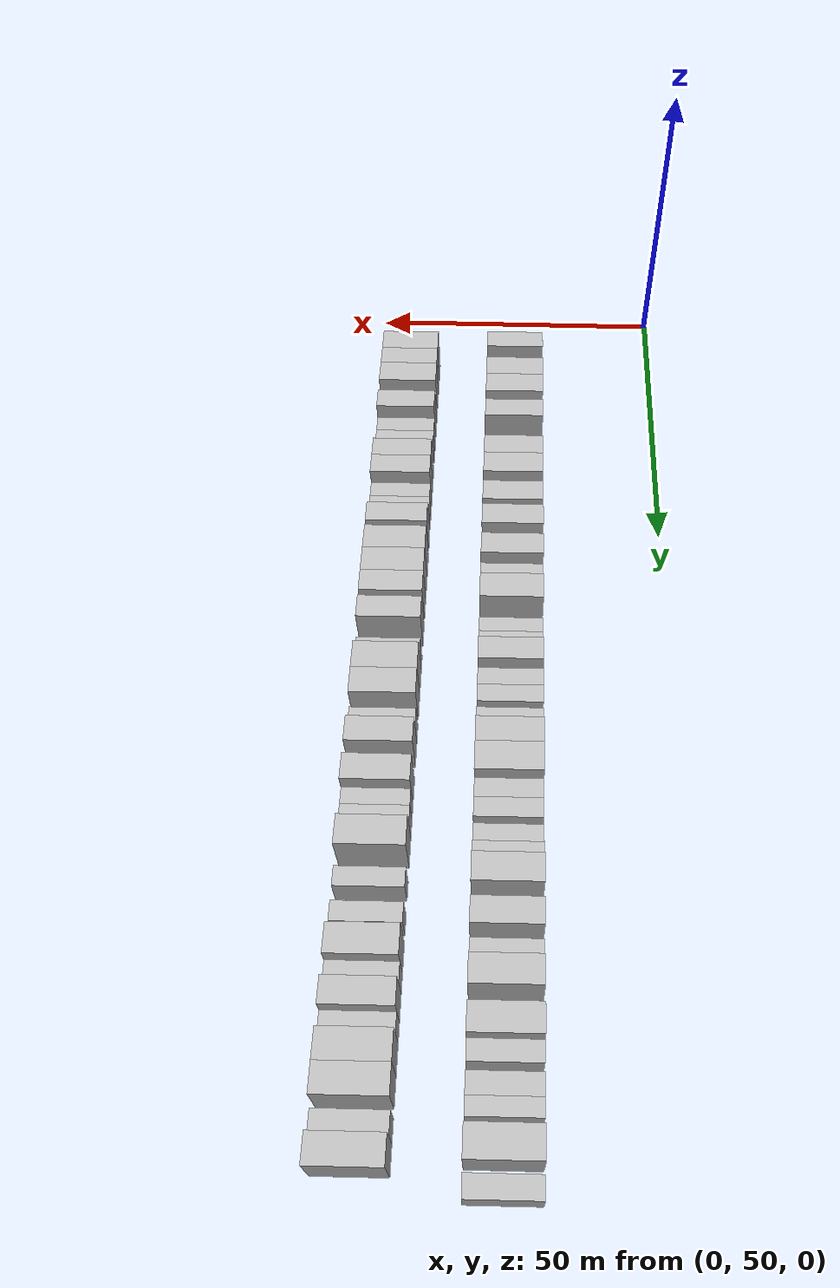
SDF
<sdf version="1.6">
 <world name="default">
  <model name="building_69">
   <static>1</static>
   <pose>25.0000 62.7723 0 0.000000 0.000000 0.000000</pose>
   <link name="link">
    <pose>0 0 4.50 0 0 0</pose>
    <collision name="collision"><geometry><box><size>10.0000 3.6449 9.0000</size></box></geometry></collision>
    <visual name="visual">
     <cast_shadows>0</cast_shadows>
     <geometry><box><size>10.0000 3.6449 9.0000</size></box></geometry>
     <material>
      <script>
       <uri>model://HANNAS_wall/materials/scripts</uri>
       <uri>model://HANNAS_wall/materials/textures</uri>
       <name>vrc/HANNAS_wall</name>
      </script>
     </material>
    </visual>
   </link>
  </model>
  <model name="building_70">
   <static>1</static>
   <pose>25.0000 65.9614 0 0.000000 0.000000 0.000000</pose>
   <link name="link">
    <pose>0 0 3.00 0 0 0</pose>
    <collision name="collision"><geometry><box><size>10.0000 2.7334 6.0000</size></box></geometry></collision>
    <visual name="visual">
     <cast_shadows>0</cast_shadows>
     <geometry><box><size>10.0000 2.7334 6.0000</size></box></geometry>
     <material>
      <script>
       <uri>model://HANNAS_wall/materials/scripts</uri>
       <uri>model://HANNAS_wall/materials/textures</uri>
       <name>vrc/HANNAS_wall</name>
      </script>
     </material>
    </visual>
   </link>
  </model>
  <model name="building_71">
   <static>1</static>
   <pose>25.0000 69.3391 0 0.000000 0.000000 0.000000</pose>
   <link name="link">
    <pose>0 0 4.50 0 0 0</pose>
    <collision name="collision"><geometry><box><size>10.0000 4.0219 9.0000</size></box></geometry></collision>
    <visual name="visual">
     <cast_shadows>0</cast_shadows>
     <geometry><box><size>10.0000 4.0219 9.0000</size></box></geometry>
     <material>
      <script>
       <uri>model://HANNAS_wall/materials/scripts</uri>
       <uri>model://HANNAS_wall/materials/textures</uri>
       <name>vrc/HANNAS_wall</name>
      </script>
     </material>
    </visual>
   </link>
  </model>
  <model name="building_72">
   <static>1</static>
   <pose>25.0000 73.4001 0 0.000000 0.000000 0.000000</pose>
   <link name="link">
    <pose>0 0 4.50 0 0 0</pose>
    <collision name="collision"><geometry><box><size>10.0000 4.1000 9.0000</size></box></geometry></collision>
    <visual name="visual">
     <cast_shadows>0</cast_shadows>
     <geometry><box><size>10.0000 4.1000 9.0000</size></box></geometry>
     <material>
      <script>
       <uri>model://HANNAS_wall/materials/scripts</uri>
       <uri>model://HANNAS_wall/materials/textures</uri>
       <name>vrc/HANNAS_wall</name>
      </script>
     </material>
    </visual>
   </link>
  </model>
  <model name="building_73">
   <static>1</static>
   <pose>25.0000 79.2902 0 0.000000 0.000000 0.000000</pose>
   <link name="link">
    <pose>0 0 4.50 0 0 0</pose>
    <collision name="collision"><geometry><box><size>10.0000 3.6803 9.0000</size></box></geometry></collision>
    <visual name="visual">
     <cast_shadows>0</cast_shadows>
     <geometry><box><size>10.0000 3.6803 9.0000</size></box></geometry>
     <material>
      <script>
       <uri>model://HANNAS_wall/materials/scripts</uri>
       <uri>model://HANNAS_wall/materials/textures</uri>
       <name>vrc/HANNAS_wall</name>
      </script>
     </material>
    </visual>
   </link>
  </model>
  <model name="building_74">
   <static>1</static>
   <pose>25.0000 84.4022 0 0.000000 0.000000 0.000000</pose>
   <link name="link">
    <pose>0 0 3.00 0 0 0</pose>
    <collision name="collision"><geometry><box><size>10.0000 2.5438 6.0000</size></box></geometry></collision>
    <visual name="visual">
     <cast_shadows>0</cast_shadows>
     <geometry><box><size>10.0000 2.5438 6.0000</size></box></geometry>
     <material>
      <script>
       <uri>model://HANNAS_wall/materials/scripts</uri>
       <uri>model://HANNAS_wall/materials/textures</uri>
       <name>vrc/HANNAS_wall</name>
      </script>
     </material>
    </visual>
   </link>
  </model>
  <model name="building_75">
   <static>1</static>
   <pose>25.0000 87.5764 0 0.000000 0.000000 0.000000</pose>
   <link name="link">
    <pose>0 0 4.50 0 0 0</pose>
    <collision name="collision"><geometry><box><size>10.0000 3.8046 9.0000</size></box></geometry></collision>
    <visual name="visual">
     <cast_shadows>0</cast_shadows>
     <geometry><box><size>10.0000 3.8046 9.0000</size></box></geometry>
     <material>
      <script>
       <uri>model://HANNAS_wall/materials/scripts</uri>
       <uri>model://HANNAS_wall/materials/textures</uri>
       <name>vrc/HANNAS_wall</name>
      </script>
     </material>
    </visual>
   </link>
  </model>
  <model name="building_76">
   <static>1</static>
   <pose>25.0000 91.5345 0 0.000000 0.000000 0.000000</pose>
   <link name="link">
    <pose>0 0 4.50 0 0 0</pose>
    <collision name="collision"><geometry><box><size>10.0000 4.1118 9.0000</size></box></geometry></collision>
    <visual name="visual">
     <cast_shadows>0</cast_shadows>
     <geometry><box><size>10.0000 4.1118 9.0000</size></box></geometry>
     <material>
      <script>
       <uri>model://HANNAS_wall/materials/scripts</uri>
       <uri>model://HANNAS_wall/materials/textures</uri>
       <name>vrc/HANNAS_wall</name>
      </script>
     </material>
    </visual>
   </link>
  </model>
  <model name="building_77">
   <static>1</static>
   <pose>25.0000 97.5127 0 0.000000 0.000000 0.000000</pose>
   <link name="link">
    <pose>0 0 4.50 0 0 0</pose>
    <collision name="collision"><geometry><box><size>10.0000 3.8446 9.0000</size></box></geometry></collision>
    <visual name="visual">
     <cast_shadows>0</cast_shadows>
     <geometry><box><size>10.0000 3.8446 9.0000</size></box></geometry>
     <material>
      <script>
       <uri>model://HANNAS_wall/materials/scripts</uri>
       <uri>model://HANNAS_wall/materials/textures</uri>
       <name>vrc/HANNAS_wall</name>
      </script>
     </material>
    </visual>
   </link>
  </model>
  <model name="building_78">
   <static>1</static>
   <pose>25.0000 102.3699 0 0.000000 0.000000 0.000000</pose>
   <link name="link">
    <pose>0 0 4.50 0 0 0</pose>
    <collision name="collision"><geometry><box><size>10.0000 3.8699 9.0000</size></box></geometry></collision>
    <visual name="visual">
     <cast_shadows>0</cast_shadows>
     <geometry><box><size>10.0000 3.8699 9.0000</size></box></geometry>
     <material>
      <script>
       <uri>model://HANNAS_wall/materials/scripts</uri>
       <uri>model://HANNAS_wall/materials/textures</uri>
       <name>vrc/HANNAS_wall</name>
      </script>
     </material>
    </visual>
   </link>
  </model>
  <model name="building_79">
   <static>1</static>
   <pose>25.0000 108.2500 0 0.000000 0.000000 0.000000</pose>
   <link name="link">
    <pose>0 0 4.50 0 0 0</pose>
    <collision name="collision"><geometry><box><size>10.0000 3.8903 9.0000</size></box></geometry></collision>
    <visual name="visual">
     <cast_shadows>0</cast_shadows>
     <geometry><box><size>10.0000 3.8903 9.0000</size></box></geometry>
     <material>
      <script>
       <uri>model://HANNAS_wall/materials/scripts</uri>
       <uri>model://HANNAS_wall/materials/textures</uri>
       <name>vrc/HANNAS_wall</name>
      </script>
     </material>
    </visual>
   </link>
  </model>
  <model name="building_80">
   <static>1</static>
   <pose>25.0000 111.6399 0 0.000000 0.000000 0.000000</pose>
   <link name="link">
    <pose>0 0 3.00 0 0 0</pose>
    <collision name="collision"><geometry><box><size>10.0000 2.8895 6.0000</size></box></geometry></collision>
    <visual name="visual">
     <cast_shadows>0</cast_shadows>
     <geometry><box><size>10.0000 2.8895 6.0000</size></box></geometry>
     <material>
      <script>
       <uri>model://HANNAS_wall/materials/scripts</uri>
       <uri>model://HANNAS_wall/materials/textures</uri>
       <name>vrc/HANNAS_wall</name>
      </script>
     </material>
    </visual>
   </link>
  </model>
  <model name="building_81">
   <static>1</static>
   <pose>25.0000 116.2690 0 0.000000 0.000000 0.000000</pose>
   <link name="link">
    <pose>0 0 4.50 0 0 0</pose>
    <collision name="collision"><geometry><box><size>10.0000 4.3688 9.0000</size></box></geometry></collision>
    <visual name="visual">
     <cast_shadows>0</cast_shadows>
     <geometry><box><size>10.0000 4.3688 9.0000</size></box></geometry>
     <material>
      <script>
       <uri>model://HANNAS_wall/materials/scripts</uri>
       <uri>model://HANNAS_wall/materials/textures</uri>
       <name>vrc/HANNAS_wall</name>
      </script>
     </material>
    </visual>
   </link>
  </model>
  <model name="building_82">
   <static>1</static>
   <pose>25.0000 121.6976 0 0.000000 0.000000 0.000000</pose>
   <link name="link">
    <pose>0 0 3.00 0 0 0</pose>
    <collision name="collision"><geometry><box><size>10.0000 2.4884 6.0000</size></box></geometry></collision>
    <visual name="visual">
     <cast_shadows>0</cast_shadows>
     <geometry><box><size>10.0000 2.4884 6.0000</size></box></geometry>
     <material>
      <script>
       <uri>model://HANNAS_wall/materials/scripts</uri>
       <uri>model://HANNAS_wall/materials/textures</uri>
       <name>vrc/HANNAS_wall</name>
      </script>
     </material>
    </visual>
   </link>
  </model>
  <model name="building_83">
   <static>1</static>
   <pose>25.0000 124.3523 0 0.000000 0.000000 0.000000</pose>
   <link name="link">
    <pose>0 0 3.00 0 0 0</pose>
    <collision name="collision"><geometry><box><size>10.0000 2.8210 6.0000</size></box></geometry></collision>
    <visual name="visual">
     <cast_shadows>0</cast_shadows>
     <geometry><box><size>10.0000 2.8210 6.0000</size></box></geometry>
     <material>
      <script>
       <uri>model://HANNAS_wall/materials/scripts</uri>
       <uri>model://HANNAS_wall/materials/textures</uri>
       <name>vrc/HANNAS_wall</name>
      </script>
     </material>
    </visual>
   </link>
  </model>
  <model name="building_84">
   <static>1</static>
   <pose>25.0000 127.6274 0 0.000000 0.000000 0.000000</pose>
   <link name="link">
    <pose>0 0 4.50 0 0 0</pose>
    <collision name="collision"><geometry><box><size>10.0000 3.7293 9.0000</size></box></geometry></collision>
    <visual name="visual">
     <cast_shadows>0</cast_shadows>
     <geometry><box><size>10.0000 3.7293 9.0000</size></box></geometry>
     <material>
      <script>
       <uri>model://HANNAS_wall/materials/scripts</uri>
       <uri>model://HANNAS_wall/materials/textures</uri>
       <name>vrc/HANNAS_wall</name>
      </script>
     </material>
    </visual>
   </link>
  </model>
  <model name="building_85">
   <static>1</static>
   <pose>25.0000 130.9080 0 0.000000 0.000000 0.000000</pose>
   <link name="link">
    <pose>0 0 3.00 0 0 0</pose>
    <collision name="collision"><geometry><box><size>10.0000 2.8320 6.0000</size></box></geometry></collision>
    <visual name="visual">
     <cast_shadows>0</cast_shadows>
     <geometry><box><size>10.0000 2.8320 6.0000</size></box></geometry>
     <material>
      <script>
       <uri>model://HANNAS_wall/materials/scripts</uri>
       <uri>model://HANNAS_wall/materials/textures</uri>
       <name>vrc/HANNAS_wall</name>
      </script>
     </material>
    </visual>
   </link>
  </model>
  <model name="building_86">
   <static>1</static>
   <pose>25.0000 133.7501 0 0.000000 0.000000 0.000000</pose>
   <link name="link">
    <pose>0 0 3.00 0 0 0</pose>
    <collision name="collision"><geometry><box><size>10.0000 2.8523 6.0000</size></box></geometry></collision>
    <visual name="visual">
     <cast_shadows>0</cast_shadows>
     <geometry><box><size>10.0000 2.8523 6.0000</size></box></geometry>
     <material>
      <script>
       <uri>model://HANNAS_wall/materials/scripts</uri>
       <uri>model://HANNAS_wall/materials/textures</uri>
       <name>vrc/HANNAS_wall</name>
      </script>
     </material>
    </visual>
   </link>
  </model>
  <model name="building_87">
   <static>1</static>
   <pose>25.0000 137.6709 0 0.000000 0.000000 0.000000</pose>
   <link name="link">
    <pose>0 0 3.00 0 0 0</pose>
    <collision name="collision"><geometry><box><size>10.0000 2.9893 6.0000</size></box></geometry></collision>
    <visual name="visual">
     <cast_shadows>0</cast_shadows>
     <geometry><box><size>10.0000 2.9893 6.0000</size></box></geometry>
     <material>
      <script>
       <uri>model://HANNAS_wall/materials/scripts</uri>
       <uri>model://HANNAS_wall/materials/textures</uri>
       <name>vrc/HANNAS_wall</name>
      </script>
     </material>
    </visual>
   </link>
  </model>
  <model name="building_88">
   <static>1</static>
   <pose>25.0000 141.1245 0 0.000000 0.000000 0.000000</pose>
   <link name="link">
    <pose>0 0 4.50 0 0 0</pose>
    <collision name="collision"><geometry><box><size>10.0000 3.9179 9.0000</size></box></geometry></collision>
    <visual name="visual">
     <cast_shadows>0</cast_shadows>
     <geometry><box><size>10.0000 3.9179 9.0000</size></box></geometry>
     <material>
      <script>
       <uri>model://HANNAS_wall/materials/scripts</uri>
       <uri>model://HANNAS_wall/materials/textures</uri>
       <name>vrc/HANNAS_wall</name>
      </script>
     </material>
    </visual>
   </link>
  </model>
  <model name="building_89">
   <static>1</static>
   <pose>25.0000 145.2997 0 0.000000 0.000000 0.000000</pose>
   <link name="link">
    <pose>0 0 4.50 0 0 0</pose>
    <collision name="collision"><geometry><box><size>10.0000 4.4324 9.0000</size></box></geometry></collision>
    <visual name="visual">
     <cast_shadows>0</cast_shadows>
     <geometry><box><size>10.0000 4.4324 9.0000</size></box></geometry>
     <material>
      <script>
       <uri>model://HANNAS_wall/materials/scripts</uri>
       <uri>model://HANNAS_wall/materials/textures</uri>
       <name>vrc/HANNAS_wall</name>
      </script>
     </material>
    </visual>
   </link>
  </model>
  <model name="building_90">
   <static>1</static>
   <pose>25.0000 148.9652 0 0.000000 0.000000 0.000000</pose>
   <link name="link">
    <pose>0 0 3.00 0 0 0</pose>
    <collision name="collision"><geometry><box><size>10.0000 2.8987 6.0000</size></box></geometry></collision>
    <visual name="visual">
     <cast_shadows>0</cast_shadows>
     <geometry><box><size>10.0000 2.8987 6.0000</size></box></geometry>
     <material>
      <script>
       <uri>model://HANNAS_wall/materials/scripts</uri>
       <uri>model://HANNAS_wall/materials/textures</uri>
       <name>vrc/HANNAS_wall</name>
      </script>
     </material>
    </visual>
   </link>
  </model>
  <model name="building_91">
   <static>1</static>
   <pose>25.0000 151.9021 0 0.000000 0.000000 0.000000</pose>
   <link name="link">
    <pose>0 0 3.00 0 0 0</pose>
    <collision name="collision"><geometry><box><size>10.0000 2.9752 6.0000</size></box></geometry></collision>
    <visual name="visual">
     <cast_shadows>0</cast_shadows>
     <geometry><box><size>10.0000 2.9752 6.0000</size></box></geometry>
     <material>
      <script>
       <uri>model://HANNAS_wall/materials/scripts</uri>
       <uri>model://HANNAS_wall/materials/textures</uri>
       <name>vrc/HANNAS_wall</name>
      </script>
     </material>
    </visual>
   </link>
  </model>
  <model name="building_92">
   <static>1</static>
   <pose>25.0000 155.6511 0 0.000000 0.000000 0.000000</pose>
   <link name="link">
    <pose>0 0 3.00 0 0 0</pose>
    <collision name="collision"><geometry><box><size>10.0000 2.5227 6.0000</size></box></geometry></collision>
    <visual name="visual">
     <cast_shadows>0</cast_shadows>
     <geometry><box><size>10.0000 2.5227 6.0000</size></box></geometry>
     <material>
      <script>
       <uri>model://HANNAS_wall/materials/scripts</uri>
       <uri>model://HANNAS_wall/materials/textures</uri>
       <name>vrc/HANNAS_wall</name>
      </script>
     </material>
    </visual>
   </link>
  </model>
  <model name="building_93">
   <static>1</static>
   <pose>25.0000 158.2390 0 0.000000 0.000000 0.000000</pose>
   <link name="link">
    <pose>0 0 3.00 0 0 0</pose>
    <collision name="collision"><geometry><box><size>10.0000 2.6532 6.0000</size></box></geometry></collision>
    <visual name="visual">
     <cast_shadows>0</cast_shadows>
     <geometry><box><size>10.0000 2.6532 6.0000</size></box></geometry>
     <material>
      <script>
       <uri>model://HANNAS_wall/materials/scripts</uri>
       <uri>model://HANNAS_wall/materials/textures</uri>
       <name>vrc/HANNAS_wall</name>
      </script>
     </material>
    </visual>
   </link>
  </model>
  <model name="building_94">
   <static>1</static>
   <pose>25.0000 161.5981 0 0.000000 0.000000 0.000000</pose>
   <link name="link">
    <pose>0 0 4.50 0 0 0</pose>
    <collision name="collision"><geometry><box><size>10.0000 4.0651 9.0000</size></box></geometry></collision>
    <visual name="visual">
     <cast_shadows>0</cast_shadows>
     <geometry><box><size>10.0000 4.0651 9.0000</size></box></geometry>
     <material>
      <script>
       <uri>model://HANNAS_wall/materials/scripts</uri>
       <uri>model://HANNAS_wall/materials/textures</uri>
       <name>vrc/HANNAS_wall</name>
      </script>
     </material>
    </visual>
   </link>
  </model>
  <model name="building_95">
   <static>1</static>
   <pose>25.0000 167.4793 0 0.000000 0.000000 0.000000</pose>
   <link name="link">
    <pose>0 0 4.50 0 0 0</pose>
    <collision name="collision"><geometry><box><size>10.0000 3.6972 9.0000</size></box></geometry></collision>
    <visual name="visual">
     <cast_shadows>0</cast_shadows>
     <geometry><box><size>10.0000 3.6972 9.0000</size></box></geometry>
     <material>
      <script>
       <uri>model://HANNAS_wall/materials/scripts</uri>
       <uri>model://HANNAS_wall/materials/textures</uri>
       <name>vrc/HANNAS_wall</name>
      </script>
     </material>
    </visual>
   </link>
  </model>
  <model name="building_96">
   <static>1</static>
   <pose>25.0000 171.7171 0 0.000000 0.000000 0.000000</pose>
   <link name="link">
    <pose>0 0 3.00 0 0 0</pose>
    <collision name="collision"><geometry><box><size>10.0000 2.7785 6.0000</size></box></geometry></collision>
    <visual name="visual">
     <cast_shadows>0</cast_shadows>
     <geometry><box><size>10.0000 2.7785 6.0000</size></box></geometry>
     <material>
      <script>
       <uri>model://HANNAS_wall/materials/scripts</uri>
       <uri>model://HANNAS_wall/materials/textures</uri>
       <name>vrc/HANNAS_wall</name>
      </script>
     </material>
    </visual>
   </link>
  </model>
  <model name="building_97">
   <static>1</static>
   <pose>25.0000 175.0784 0 0.000000 0.000000 0.000000</pose>
   <link name="link">
    <pose>0 0 4.50 0 0 0</pose>
    <collision name="collision"><geometry><box><size>10.0000 3.9442 9.0000</size></box></geometry></collision>
    <visual name="visual">
     <cast_shadows>0</cast_shadows>
     <geometry><box><size>10.0000 3.9442 9.0000</size></box></geometry>
     <material>
      <script>
       <uri>model://HANNAS_wall/materials/scripts</uri>
       <uri>model://HANNAS_wall/materials/textures</uri>
       <name>vrc/HANNAS_wall</name>
      </script>
     </material>
    </visual>
   </link>
  </model>
  <model name="building_98">
   <static>1</static>
   <pose>25.0000 181.0126 0 0.000000 0.000000 0.000000</pose>
   <link name="link">
    <pose>0 0 4.50 0 0 0</pose>
    <collision name="collision"><geometry><box><size>10.0000 3.9243 9.0000</size></box></geometry></collision>
    <visual name="visual">
     <cast_shadows>0</cast_shadows>
     <geometry><box><size>10.0000 3.9243 9.0000</size></box></geometry>
     <material>
      <script>
       <uri>model://HANNAS_wall/materials/scripts</uri>
       <uri>model://HANNAS_wall/materials/textures</uri>
       <name>vrc/HANNAS_wall</name>
      </script>
     </material>
    </visual>
   </link>
  </model>
  <model name="building_99">
   <static>1</static>
   <pose>25.0000 184.3781 0 0.000000 0.000000 0.000000</pose>
   <link name="link">
    <pose>0 0 3.00 0 0 0</pose>
    <collision name="collision"><geometry><box><size>10.0000 2.8066 6.0000</size></box></geometry></collision>
    <visual name="visual">
     <cast_shadows>0</cast_shadows>
     <geometry><box><size>10.0000 2.8066 6.0000</size></box></geometry>
     <material>
      <script>
       <uri>model://HANNAS_wall/materials/scripts</uri>
       <uri>model://HANNAS_wall/materials/textures</uri>
       <name>vrc/HANNAS_wall</name>
      </script>
     </material>
    </visual>
   </link>
  </model>
  <model name="building_100">
   <static>1</static>
   <pose>25.0000 188.2224 0 0.000000 0.000000 0.000000</pose>
   <link name="link">
    <pose>0 0 3.00 0 0 0</pose>
    <collision name="collision"><geometry><box><size>10.0000 2.8821 6.0000</size></box></geometry></collision>
    <visual name="visual">
     <cast_shadows>0</cast_shadows>
     <geometry><box><size>10.0000 2.8821 6.0000</size></box></geometry>
     <material>
      <script>
       <uri>model://HANNAS_wall/materials/scripts</uri>
       <uri>model://HANNAS_wall/materials/textures</uri>
       <name>vrc/HANNAS_wall</name>
      </script>
     </material>
    </visual>
   </link>
  </model>
  <model name="building_101">
   <static>1</static>
   <pose>25.0000 190.8801 0 0.000000 0.000000 0.000000</pose>
   <link name="link">
    <pose>0 0 3.00 0 0 0</pose>
    <collision name="collision"><geometry><box><size>10.0000 2.4333 6.0000</size></box></geometry></collision>
    <visual name="visual">
     <cast_shadows>0</cast_shadows>
     <geometry><box><size>10.0000 2.4333 6.0000</size></box></geometry>
     <material>
      <script>
       <uri>model://HANNAS_wall/materials/scripts</uri>
       <uri>model://HANNAS_wall/materials/textures</uri>
       <name>vrc/HANNAS_wall</name>
      </script>
     </material>
    </visual>
   </link>
  </model>
  <model name="building_102">
   <static>1</static>
   <pose>25.0000 195.1620 0 0.000000 0.000000 0.000000</pose>
   <link name="link">
    <pose>0 0 4.50 0 0 0</pose>
    <collision name="collision"><geometry><box><size>10.0000 4.1303 9.0000</size></box></geometry></collision>
    <visual name="visual">
     <cast_shadows>0</cast_shadows>
     <geometry><box><size>10.0000 4.1303 9.0000</size></box></geometry>
     <material>
      <script>
       <uri>model://HANNAS_wall/materials/scripts</uri>
       <uri>model://HANNAS_wall/materials/textures</uri>
       <name>vrc/HANNAS_wall</name>
      </script>
     </material>
    </visual>
   </link>
  </model>
  <model name="building_103">
   <static>1</static>
   <pose>25.0000 199.6513 0 0.000000 0.000000 0.000000</pose>
   <link name="link">
    <pose>0 0 3.00 0 0 0</pose>
    <collision name="collision"><geometry><box><size>10.0000 2.8484 6.0000</size></box></geometry></collision>
    <visual name="visual">
     <cast_shadows>0</cast_shadows>
     <geometry><box><size>10.0000 2.8484 6.0000</size></box></geometry>
     <material>
      <script>
       <uri>model://HANNAS_wall/materials/scripts</uri>
       <uri>model://HANNAS_wall/materials/textures</uri>
       <name>vrc/HANNAS_wall</name>
      </script>
     </material>
    </visual>
   </link>
  </model>
  <model name="building_174">
   <static>1</static>
   <pose>44.0000 63.3335 0 0.000000 0.000000 0.000000</pose>
   <link name="link">
    <pose>0 0 4.50 0 0 0</pose>
    <collision name="collision"><geometry><box><size>10.0000 4.1447 9.0000</size></box></geometry></collision>
    <visual name="visual">
     <cast_shadows>0</cast_shadows>
     <geometry><box><size>10.0000 4.1447 9.0000</size></box></geometry>
     <material>
      <script>
       <uri>model://HANNAS_wall/materials/scripts</uri>
       <uri>model://HANNAS_wall/materials/textures</uri>
       <name>vrc/HANNAS_wall</name>
      </script>
     </material>
    </visual>
   </link>
  </model>
  <model name="building_175">
   <static>1</static>
   <pose>44.0000 67.2231 0 0.000000 0.000000 0.000000</pose>
   <link name="link">
    <pose>0 0 4.50 0 0 0</pose>
    <collision name="collision"><geometry><box><size>10.0000 3.6344 9.0000</size></box></geometry></collision>
    <visual name="visual">
     <cast_shadows>0</cast_shadows>
     <geometry><box><size>10.0000 3.6344 9.0000</size></box></geometry>
     <material>
      <script>
       <uri>model://HANNAS_wall/materials/scripts</uri>
       <uri>model://HANNAS_wall/materials/textures</uri>
       <name>vrc/HANNAS_wall</name>
      </script>
     </material>
    </visual>
   </link>
  </model>
  <model name="building_176">
   <static>1</static>
   <pose>44.0000 71.1637 0 0.000000 0.000000 0.000000</pose>
   <link name="link">
    <pose>0 0 4.50 0 0 0</pose>
    <collision name="collision"><geometry><box><size>10.0000 4.2470 9.0000</size></box></geometry></collision>
    <visual name="visual">
     <cast_shadows>0</cast_shadows>
     <geometry><box><size>10.0000 4.2470 9.0000</size></box></geometry>
     <material>
      <script>
       <uri>model://HANNAS_wall/materials/scripts</uri>
       <uri>model://HANNAS_wall/materials/textures</uri>
       <name>vrc/HANNAS_wall</name>
      </script>
     </material>
    </visual>
   </link>
  </model>
  <model name="building_177">
   <static>1</static>
   <pose>44.0000 74.4994 0 0.000000 0.000000 0.000000</pose>
   <link name="link">
    <pose>0 0 3.00 0 0 0</pose>
    <collision name="collision"><geometry><box><size>10.0000 2.4245 6.0000</size></box></geometry></collision>
    <visual name="visual">
     <cast_shadows>0</cast_shadows>
     <geometry><box><size>10.0000 2.4245 6.0000</size></box></geometry>
     <material>
      <script>
       <uri>model://HANNAS_wall/materials/scripts</uri>
       <uri>model://HANNAS_wall/materials/textures</uri>
       <name>vrc/HANNAS_wall</name>
      </script>
     </material>
    </visual>
   </link>
  </model>
  <model name="building_178">
   <static>1</static>
   <pose>44.0000 77.5977 0 0.000000 0.000000 0.000000</pose>
   <link name="link">
    <pose>0 0 4.50 0 0 0</pose>
    <collision name="collision"><geometry><box><size>10.0000 3.7720 9.0000</size></box></geometry></collision>
    <visual name="visual">
     <cast_shadows>0</cast_shadows>
     <geometry><box><size>10.0000 3.7720 9.0000</size></box></geometry>
     <material>
      <script>
       <uri>model://HANNAS_wall/materials/scripts</uri>
       <uri>model://HANNAS_wall/materials/textures</uri>
       <name>vrc/HANNAS_wall</name>
      </script>
     </material>
    </visual>
   </link>
  </model>
  <model name="building_179">
   <static>1</static>
   <pose>44.0000 80.9492 0 0.000000 0.000000 0.000000</pose>
   <link name="link">
    <pose>0 0 3.00 0 0 0</pose>
    <collision name="collision"><geometry><box><size>10.0000 2.9309 6.0000</size></box></geometry></collision>
    <visual name="visual">
     <cast_shadows>0</cast_shadows>
     <geometry><box><size>10.0000 2.9309 6.0000</size></box></geometry>
     <material>
      <script>
       <uri>model://HANNAS_wall/materials/scripts</uri>
       <uri>model://HANNAS_wall/materials/textures</uri>
       <name>vrc/HANNAS_wall</name>
      </script>
     </material>
    </visual>
   </link>
  </model>
  <model name="building_180">
   <static>1</static>
   <pose>44.0000 83.6189 0 0.000000 0.000000 0.000000</pose>
   <link name="link">
    <pose>0 0 3.00 0 0 0</pose>
    <collision name="collision"><geometry><box><size>10.0000 2.4085 6.0000</size></box></geometry></collision>
    <visual name="visual">
     <cast_shadows>0</cast_shadows>
     <geometry><box><size>10.0000 2.4085 6.0000</size></box></geometry>
     <material>
      <script>
       <uri>model://HANNAS_wall/materials/scripts</uri>
       <uri>model://HANNAS_wall/materials/textures</uri>
       <name>vrc/HANNAS_wall</name>
      </script>
     </material>
    </visual>
   </link>
  </model>
  <model name="building_181">
   <static>1</static>
   <pose>44.0000 88.6315 0 0.000000 0.000000 0.000000</pose>
   <link name="link">
    <pose>0 0 4.50 0 0 0</pose>
    <collision name="collision"><geometry><box><size>10.0000 3.6166 9.0000</size></box></geometry></collision>
    <visual name="visual">
     <cast_shadows>0</cast_shadows>
     <geometry><box><size>10.0000 3.6166 9.0000</size></box></geometry>
     <material>
      <script>
       <uri>model://HANNAS_wall/materials/scripts</uri>
       <uri>model://HANNAS_wall/materials/textures</uri>
       <name>vrc/HANNAS_wall</name>
      </script>
     </material>
    </visual>
   </link>
  </model>
  <model name="building_182">
   <static>1</static>
   <pose>44.0000 92.2735 0 0.000000 0.000000 0.000000</pose>
   <link name="link">
    <pose>0 0 4.50 0 0 0</pose>
    <collision name="collision"><geometry><box><size>10.0000 3.6674 9.0000</size></box></geometry></collision>
    <visual name="visual">
     <cast_shadows>0</cast_shadows>
     <geometry><box><size>10.0000 3.6674 9.0000</size></box></geometry>
     <material>
      <script>
       <uri>model://HANNAS_wall/materials/scripts</uri>
       <uri>model://HANNAS_wall/materials/textures</uri>
       <name>vrc/HANNAS_wall</name>
      </script>
     </material>
    </visual>
   </link>
  </model>
  <model name="building_183">
   <static>1</static>
   <pose>44.0000 95.5184 0 0.000000 0.000000 0.000000</pose>
   <link name="link">
    <pose>0 0 3.00 0 0 0</pose>
    <collision name="collision"><geometry><box><size>10.0000 2.8225 6.0000</size></box></geometry></collision>
    <visual name="visual">
     <cast_shadows>0</cast_shadows>
     <geometry><box><size>10.0000 2.8225 6.0000</size></box></geometry>
     <material>
      <script>
       <uri>model://HANNAS_wall/materials/scripts</uri>
       <uri>model://HANNAS_wall/materials/textures</uri>
       <name>vrc/HANNAS_wall</name>
      </script>
     </material>
    </visual>
   </link>
  </model>
  <model name="building_184">
   <static>1</static>
   <pose>44.0000 98.2304 0 0.000000 0.000000 0.000000</pose>
   <link name="link">
    <pose>0 0 3.00 0 0 0</pose>
    <collision name="collision"><geometry><box><size>10.0000 2.6015 6.0000</size></box></geometry></collision>
    <visual name="visual">
     <cast_shadows>0</cast_shadows>
     <geometry><box><size>10.0000 2.6015 6.0000</size></box></geometry>
     <material>
      <script>
       <uri>model://HANNAS_wall/materials/scripts</uri>
       <uri>model://HANNAS_wall/materials/textures</uri>
       <name>vrc/HANNAS_wall</name>
      </script>
     </material>
    </visual>
   </link>
  </model>
  <model name="building_185">
   <static>1</static>
   <pose>44.0000 102.3484 0 0.000000 0.000000 0.000000</pose>
   <link name="link">
    <pose>0 0 4.50 0 0 0</pose>
    <collision name="collision"><geometry><box><size>10.0000 3.6345 9.0000</size></box></geometry></collision>
    <visual name="visual">
     <cast_shadows>0</cast_shadows>
     <geometry><box><size>10.0000 3.6345 9.0000</size></box></geometry>
     <material>
      <script>
       <uri>model://HANNAS_wall/materials/scripts</uri>
       <uri>model://HANNAS_wall/materials/textures</uri>
       <name>vrc/HANNAS_wall</name>
      </script>
     </material>
    </visual>
   </link>
  </model>
  <model name="building_186">
   <static>1</static>
   <pose>44.0000 107.3290 0 0.000000 0.000000 0.000000</pose>
   <link name="link">
    <pose>0 0 4.50 0 0 0</pose>
    <collision name="collision"><geometry><box><size>10.0000 4.3266 9.0000</size></box></geometry></collision>
    <visual name="visual">
     <cast_shadows>0</cast_shadows>
     <geometry><box><size>10.0000 4.3266 9.0000</size></box></geometry>
     <material>
      <script>
       <uri>model://HANNAS_wall/materials/scripts</uri>
       <uri>model://HANNAS_wall/materials/textures</uri>
       <name>vrc/HANNAS_wall</name>
      </script>
     </material>
    </visual>
   </link>
  </model>
  <model name="building_187">
   <static>1</static>
   <pose>44.0000 111.6939 0 0.000000 0.000000 0.000000</pose>
   <link name="link">
    <pose>0 0 4.50 0 0 0</pose>
    <collision name="collision"><geometry><box><size>10.0000 4.4031 9.0000</size></box></geometry></collision>
    <visual name="visual">
     <cast_shadows>0</cast_shadows>
     <geometry><box><size>10.0000 4.4031 9.0000</size></box></geometry>
     <material>
      <script>
       <uri>model://HANNAS_wall/materials/scripts</uri>
       <uri>model://HANNAS_wall/materials/textures</uri>
       <name>vrc/HANNAS_wall</name>
      </script>
     </material>
    </visual>
   </link>
  </model>
  <model name="building_188">
   <static>1</static>
   <pose>44.0000 115.8003 0 0.000000 0.000000 0.000000</pose>
   <link name="link">
    <pose>0 0 4.50 0 0 0</pose>
    <collision name="collision"><geometry><box><size>10.0000 3.8097 9.0000</size></box></geometry></collision>
    <visual name="visual">
     <cast_shadows>0</cast_shadows>
     <geometry><box><size>10.0000 3.8097 9.0000</size></box></geometry>
     <material>
      <script>
       <uri>model://HANNAS_wall/materials/scripts</uri>
       <uri>model://HANNAS_wall/materials/textures</uri>
       <name>vrc/HANNAS_wall</name>
      </script>
     </material>
    </visual>
   </link>
  </model>
  <model name="building_189">
   <static>1</static>
   <pose>44.0000 120.6178 0 0.000000 0.000000 0.000000</pose>
   <link name="link">
    <pose>0 0 4.50 0 0 0</pose>
    <collision name="collision"><geometry><box><size>10.0000 3.8255 9.0000</size></box></geometry></collision>
    <visual name="visual">
     <cast_shadows>0</cast_shadows>
     <geometry><box><size>10.0000 3.8255 9.0000</size></box></geometry>
     <material>
      <script>
       <uri>model://HANNAS_wall/materials/scripts</uri>
       <uri>model://HANNAS_wall/materials/textures</uri>
       <name>vrc/HANNAS_wall</name>
      </script>
     </material>
    </visual>
   </link>
  </model>
  <model name="building_190">
   <static>1</static>
   <pose>44.0000 125.7440 0 0.000000 0.000000 0.000000</pose>
   <link name="link">
    <pose>0 0 3.00 0 0 0</pose>
    <collision name="collision"><geometry><box><size>10.0000 2.4267 6.0000</size></box></geometry></collision>
    <visual name="visual">
     <cast_shadows>0</cast_shadows>
     <geometry><box><size>10.0000 2.4267 6.0000</size></box></geometry>
     <material>
      <script>
       <uri>model://HANNAS_wall/materials/scripts</uri>
       <uri>model://HANNAS_wall/materials/textures</uri>
       <name>vrc/HANNAS_wall</name>
      </script>
     </material>
    </visual>
   </link>
  </model>
  <model name="building_191">
   <static>1</static>
   <pose>44.0000 129.1956 0 0.000000 0.000000 0.000000</pose>
   <link name="link">
    <pose>0 0 4.50 0 0 0</pose>
    <collision name="collision"><geometry><box><size>10.0000 4.4765 9.0000</size></box></geometry></collision>
    <visual name="visual">
     <cast_shadows>0</cast_shadows>
     <geometry><box><size>10.0000 4.4765 9.0000</size></box></geometry>
     <material>
      <script>
       <uri>model://HANNAS_wall/materials/scripts</uri>
       <uri>model://HANNAS_wall/materials/textures</uri>
       <name>vrc/HANNAS_wall</name>
      </script>
     </material>
    </visual>
   </link>
  </model>
  <model name="building_192">
   <static>1</static>
   <pose>44.0000 133.5241 0 0.000000 0.000000 0.000000</pose>
   <link name="link">
    <pose>0 0 4.50 0 0 0</pose>
    <collision name="collision"><geometry><box><size>10.0000 4.1805 9.0000</size></box></geometry></collision>
    <visual name="visual">
     <cast_shadows>0</cast_shadows>
     <geometry><box><size>10.0000 4.1805 9.0000</size></box></geometry>
     <material>
      <script>
       <uri>model://HANNAS_wall/materials/scripts</uri>
       <uri>model://HANNAS_wall/materials/textures</uri>
       <name>vrc/HANNAS_wall</name>
      </script>
     </material>
    </visual>
   </link>
  </model>
  <model name="building_193">
   <static>1</static>
   <pose>44.0000 138.0820 0 0.000000 0.000000 0.000000</pose>
   <link name="link">
    <pose>0 0 3.00 0 0 0</pose>
    <collision name="collision"><geometry><box><size>10.0000 2.9354 6.0000</size></box></geometry></collision>
    <visual name="visual">
     <cast_shadows>0</cast_shadows>
     <geometry><box><size>10.0000 2.9354 6.0000</size></box></geometry>
     <material>
      <script>
       <uri>model://HANNAS_wall/materials/scripts</uri>
       <uri>model://HANNAS_wall/materials/textures</uri>
       <name>vrc/HANNAS_wall</name>
      </script>
     </material>
    </visual>
   </link>
  </model>
  <model name="building_194">
   <static>1</static>
   <pose>44.0000 141.5049 0 0.000000 0.000000 0.000000</pose>
   <link name="link">
    <pose>0 0 4.50 0 0 0</pose>
    <collision name="collision"><geometry><box><size>10.0000 3.9103 9.0000</size></box></geometry></collision>
    <visual name="visual">
     <cast_shadows>0</cast_shadows>
     <geometry><box><size>10.0000 3.9103 9.0000</size></box></geometry>
     <material>
      <script>
       <uri>model://HANNAS_wall/materials/scripts</uri>
       <uri>model://HANNAS_wall/materials/textures</uri>
       <name>vrc/HANNAS_wall</name>
      </script>
     </material>
    </visual>
   </link>
  </model>
  <model name="building_195">
   <static>1</static>
   <pose>44.0000 147.4467 0 0.000000 0.000000 0.000000</pose>
   <link name="link">
    <pose>0 0 4.50 0 0 0</pose>
    <collision name="collision"><geometry><box><size>10.0000 3.9735 9.0000</size></box></geometry></collision>
    <visual name="visual">
     <cast_shadows>0</cast_shadows>
     <geometry><box><size>10.0000 3.9735 9.0000</size></box></geometry>
     <material>
      <script>
       <uri>model://HANNAS_wall/materials/scripts</uri>
       <uri>model://HANNAS_wall/materials/textures</uri>
       <name>vrc/HANNAS_wall</name>
      </script>
     </material>
    </visual>
   </link>
  </model>
  <model name="building_196">
   <static>1</static>
   <pose>44.0000 150.6861 0 0.000000 0.000000 0.000000</pose>
   <link name="link">
    <pose>0 0 3.00 0 0 0</pose>
    <collision name="collision"><geometry><box><size>10.0000 2.5053 6.0000</size></box></geometry></collision>
    <visual name="visual">
     <cast_shadows>0</cast_shadows>
     <geometry><box><size>10.0000 2.5053 6.0000</size></box></geometry>
     <material>
      <script>
       <uri>model://HANNAS_wall/materials/scripts</uri>
       <uri>model://HANNAS_wall/materials/textures</uri>
       <name>vrc/HANNAS_wall</name>
      </script>
     </material>
    </visual>
   </link>
  </model>
  <model name="building_197">
   <static>1</static>
   <pose>44.0000 153.2979 0 0.000000 0.000000 0.000000</pose>
   <link name="link">
    <pose>0 0 3.00 0 0 0</pose>
    <collision name="collision"><geometry><box><size>10.0000 2.7183 6.0000</size></box></geometry></collision>
    <visual name="visual">
     <cast_shadows>0</cast_shadows>
     <geometry><box><size>10.0000 2.7183 6.0000</size></box></geometry>
     <material>
      <script>
       <uri>model://HANNAS_wall/materials/scripts</uri>
       <uri>model://HANNAS_wall/materials/textures</uri>
       <name>vrc/HANNAS_wall</name>
      </script>
     </material>
    </visual>
   </link>
  </model>
  <model name="building_198">
   <static>1</static>
   <pose>44.0000 156.8107 0 0.000000 0.000000 0.000000</pose>
   <link name="link">
    <pose>0 0 4.50 0 0 0</pose>
    <collision name="collision"><geometry><box><size>10.0000 4.3074 9.0000</size></box></geometry></collision>
    <visual name="visual">
     <cast_shadows>0</cast_shadows>
     <geometry><box><size>10.0000 4.3074 9.0000</size></box></geometry>
     <material>
      <script>
       <uri>model://HANNAS_wall/materials/scripts</uri>
       <uri>model://HANNAS_wall/materials/textures</uri>
       <name>vrc/HANNAS_wall</name>
      </script>
     </material>
    </visual>
   </link>
  </model>
  <model name="building_199">
   <static>1</static>
   <pose>44.0000 162.3646 0 0.000000 0.000000 0.000000</pose>
   <link name="link">
    <pose>0 0 3.00 0 0 0</pose>
    <collision name="collision"><geometry><box><size>10.0000 2.8003 6.0000</size></box></geometry></collision>
    <visual name="visual">
     <cast_shadows>0</cast_shadows>
     <geometry><box><size>10.0000 2.8003 6.0000</size></box></geometry>
     <material>
      <script>
       <uri>model://HANNAS_wall/materials/scripts</uri>
       <uri>model://HANNAS_wall/materials/textures</uri>
       <name>vrc/HANNAS_wall</name>
      </script>
     </material>
    </visual>
   </link>
  </model>
  <model name="building_200">
   <static>1</static>
   <pose>44.0000 167.1678 0 0.000000 0.000000 0.000000</pose>
   <link name="link">
    <pose>0 0 3.00 0 0 0</pose>
    <collision name="collision"><geometry><box><size>10.0000 2.8062 6.0000</size></box></geometry></collision>
    <visual name="visual">
     <cast_shadows>0</cast_shadows>
     <geometry><box><size>10.0000 2.8062 6.0000</size></box></geometry>
     <material>
      <script>
       <uri>model://HANNAS_wall/materials/scripts</uri>
       <uri>model://HANNAS_wall/materials/textures</uri>
       <name>vrc/HANNAS_wall</name>
      </script>
     </material>
    </visual>
   </link>
  </model>
  <model name="building_201">
   <static>1</static>
   <pose>44.0000 171.6297 0 0.000000 0.000000 0.000000</pose>
   <link name="link">
    <pose>0 0 4.50 0 0 0</pose>
    <collision name="collision"><geometry><box><size>10.0000 4.1176 9.0000</size></box></geometry></collision>
    <visual name="visual">
     <cast_shadows>0</cast_shadows>
     <geometry><box><size>10.0000 4.1176 9.0000</size></box></geometry>
     <material>
      <script>
       <uri>model://HANNAS_wall/materials/scripts</uri>
       <uri>model://HANNAS_wall/materials/textures</uri>
       <name>vrc/HANNAS_wall</name>
      </script>
     </material>
    </visual>
   </link>
  </model>
  <model name="building_202">
   <static>1</static>
   <pose>44.0000 175.0361 0 0.000000 0.000000 0.000000</pose>
   <link name="link">
    <pose>0 0 3.00 0 0 0</pose>
    <collision name="collision"><geometry><box><size>10.0000 2.6951 6.0000</size></box></geometry></collision>
    <visual name="visual">
     <cast_shadows>0</cast_shadows>
     <geometry><box><size>10.0000 2.6951 6.0000</size></box></geometry>
     <material>
      <script>
       <uri>model://HANNAS_wall/materials/scripts</uri>
       <uri>model://HANNAS_wall/materials/textures</uri>
       <name>vrc/HANNAS_wall</name>
      </script>
     </material>
    </visual>
   </link>
  </model>
  <model name="building_203">
   <static>1</static>
   <pose>44.0000 178.2058 0 0.000000 0.000000 0.000000</pose>
   <link name="link">
    <pose>0 0 4.50 0 0 0</pose>
    <collision name="collision"><geometry><box><size>10.0000 3.6444 9.0000</size></box></geometry></collision>
    <visual name="visual">
     <cast_shadows>0</cast_shadows>
     <geometry><box><size>10.0000 3.6444 9.0000</size></box></geometry>
     <material>
      <script>
       <uri>model://HANNAS_wall/materials/scripts</uri>
       <uri>model://HANNAS_wall/materials/textures</uri>
       <name>vrc/HANNAS_wall</name>
      </script>
     </material>
    </visual>
   </link>
  </model>
  <model name="building_204">
   <static>1</static>
   <pose>44.0000 181.3144 0 0.000000 0.000000 0.000000</pose>
   <link name="link">
    <pose>0 0 3.00 0 0 0</pose>
    <collision name="collision"><geometry><box><size>10.0000 2.5727 6.0000</size></box></geometry></collision>
    <visual name="visual">
     <cast_shadows>0</cast_shadows>
     <geometry><box><size>10.0000 2.5727 6.0000</size></box></geometry>
     <material>
      <script>
       <uri>model://HANNAS_wall/materials/scripts</uri>
       <uri>model://HANNAS_wall/materials/textures</uri>
       <name>vrc/HANNAS_wall</name>
      </script>
     </material>
    </visual>
   </link>
  </model>
  <model name="building_205">
   <static>1</static>
   <pose>44.0000 184.6230 0 0.000000 0.000000 0.000000</pose>
   <link name="link">
    <pose>0 0 4.50 0 0 0</pose>
    <collision name="collision"><geometry><box><size>10.0000 4.0445 9.0000</size></box></geometry></collision>
    <visual name="visual">
     <cast_shadows>0</cast_shadows>
     <geometry><box><size>10.0000 4.0445 9.0000</size></box></geometry>
     <material>
      <script>
       <uri>model://HANNAS_wall/materials/scripts</uri>
       <uri>model://HANNAS_wall/materials/textures</uri>
       <name>vrc/HANNAS_wall</name>
      </script>
     </material>
    </visual>
   </link>
  </model>
  <model name="building_206">
   <static>1</static>
   <pose>44.0000 188.6027 0 0.000000 0.000000 0.000000</pose>
   <link name="link">
    <pose>0 0 4.50 0 0 0</pose>
    <collision name="collision"><geometry><box><size>10.0000 3.9151 9.0000</size></box></geometry></collision>
    <visual name="visual">
     <cast_shadows>0</cast_shadows>
     <geometry><box><size>10.0000 3.9151 9.0000</size></box></geometry>
     <material>
      <script>
       <uri>model://HANNAS_wall/materials/scripts</uri>
       <uri>model://HANNAS_wall/materials/textures</uri>
       <name>vrc/HANNAS_wall</name>
      </script>
     </material>
    </visual>
   </link>
  </model>
  <model name="building_207">
   <static>1</static>
   <pose>44.0000 193.0347 0 0.000000 0.000000 0.000000</pose>
   <link name="link">
    <pose>0 0 3.00 0 0 0</pose>
    <collision name="collision"><geometry><box><size>10.0000 2.9488 6.0000</size></box></geometry></collision>
    <visual name="visual">
     <cast_shadows>0</cast_shadows>
     <geometry><box><size>10.0000 2.9488 6.0000</size></box></geometry>
     <material>
      <script>
       <uri>model://HANNAS_wall/materials/scripts</uri>
       <uri>model://HANNAS_wall/materials/textures</uri>
       <name>vrc/HANNAS_wall</name>
      </script>
     </material>
    </visual>
   </link>
  </model>
  <model name="building_208">
   <static>1</static>
   <pose>44.0000 196.4164 0 0.000000 0.000000 0.000000</pose>
   <link name="link">
    <pose>0 0 4.50 0 0 0</pose>
    <collision name="collision"><geometry><box><size>10.0000 3.8145 9.0000</size></box></geometry></collision>
    <visual name="visual">
     <cast_shadows>0</cast_shadows>
     <geometry><box><size>10.0000 3.8145 9.0000</size></box></geometry>
     <material>
      <script>
       <uri>model://HANNAS_wall/materials/scripts</uri>
       <uri>model://HANNAS_wall/materials/textures</uri>
       <name>vrc/HANNAS_wall</name>
      </script>
     </material>
    </visual>
   </link>
  </model>
 </world>
</sdf>
